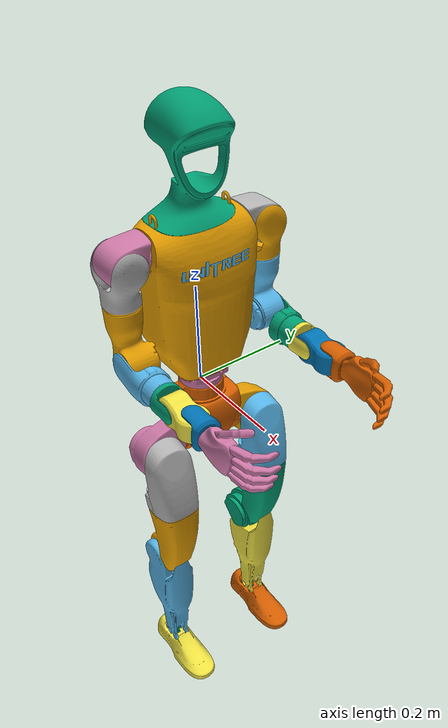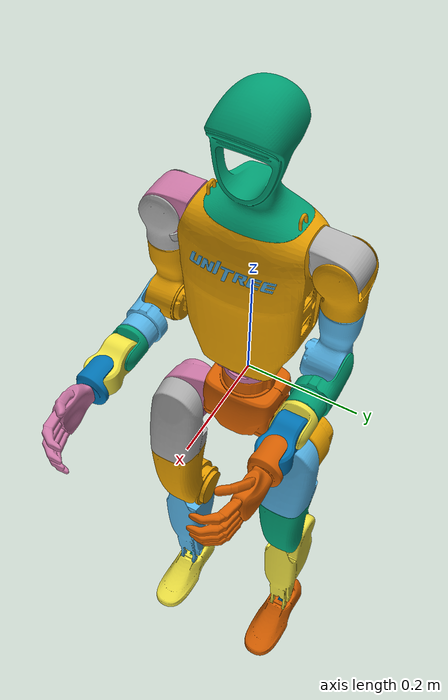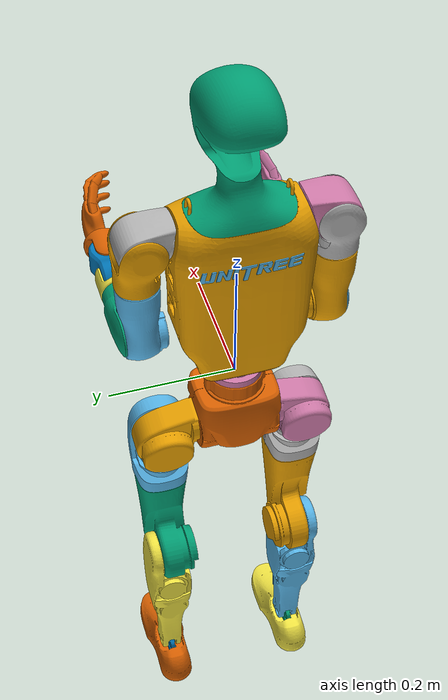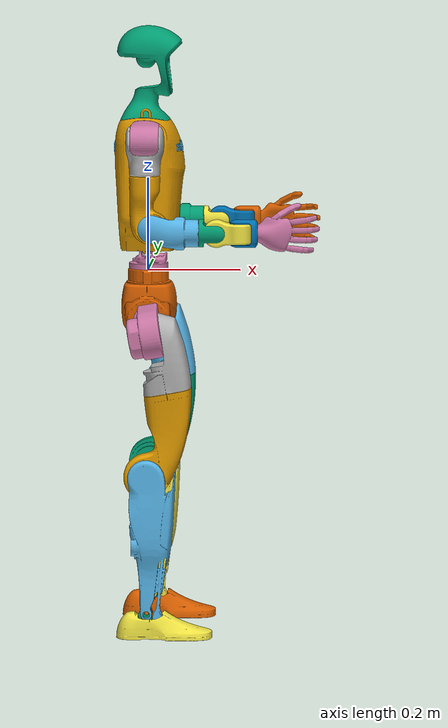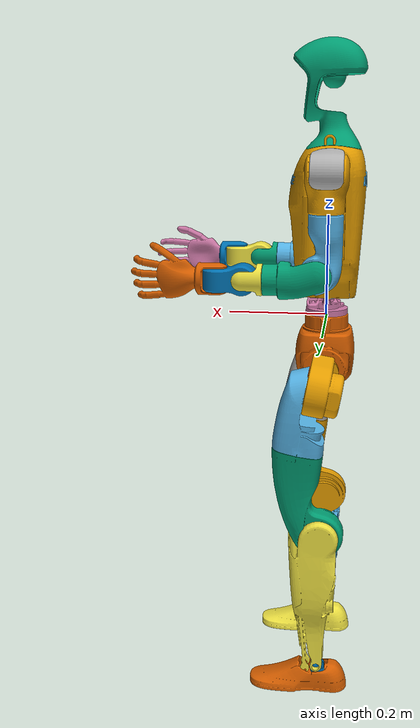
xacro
<robot name="g1_29dof" xmlns:xacro="http://www.ros.org/wiki/xacro">
	<xacro:property name="PI" value="3.1415926535897931"/>

	<xacro:arg name="end_effector" default="rubber_hand"/>

	<!-- Include the modular macros -->
	<xacro:include filename="$(find unitree_g1_description)/xacro/arm.xacro"/>
	<xacro:include filename="$(find unitree_g1_description)/xacro/leg.xacro"/>
	<xacro:include filename="$(find unitree_g1_description)/xacro/body.xacro"/>

	<!-- Legs using modular macro -->
	<!-- Left leg (direction = 1) -->
	<xacro:UnitreeG1Leg name="one" direction="1"/>

	<!-- Right leg (direction = -1 for mirroring) -->
	<xacro:UnitreeG1Leg name="two" direction="-1"/>

	<!-- Body using modular macro -->
	<xacro:UnitreeG1Body/>

	<!-- Arms using modular macro -->
	<xacro:UnitreeG1Arm name="left" direction="1"/>

	<xacro:UnitreeG1Arm name="right" direction="-1"/>

	<xacro:include filename="$(find unitree_g1_description)/xacro/hand.xacro"/>
</robot>

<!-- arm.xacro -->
<robot xmlns:xacro="http://www.ros.org/wiki/xacro">
	<xacro:property name="PI" value="3.1415926535897931"/>

	<xacro:macro name="UnitreeG1Arm" params="name direction:=1">
		<!--
		Unitree G1 Arm Macro
		Parameters:
		- name: arm name prefix (e.g., "left", "right")
		- direction: 1 for right arm, -1 for left arm (for mirroring)
		-->

		<xacro:property name="prefix" value="${name + '_' if name else ''}"/>

		<!-- Shoulder Pitch Link -->
		<link name="${prefix}shoulder_pitch_link">
			<inertial>
				<origin xyz="0 ${direction*0.035892} -0.011628"/>
				<mass value="0.718"/>
				<inertia ixx="0.0004291" ixy="${direction*-9.2E-06}" ixz="6.4E-06"
								 iyy="0.000453" iyz="${direction*2.26E-05}" izz="0.000423"/>
			</inertial>
			<visual>
				<geometry>
					<mesh filename="file://$(find unitree_g1_description)/meshes/arm/shoulder_pitch.obj"
								scale="1 ${direction} 1"/>
				</geometry>
			</visual>
			<collision>
				<origin xyz="0 ${direction*0.04} -0.01" rpy="0 ${PI/2} 0"/>
				<geometry>
					<cylinder radius="0.03" length="0.05"/>
				</geometry>
			</collision>
		</link>

		<!-- Shoulder Pitch Joint -->
		<joint name="${prefix}joint1" type="revolute">
			<origin xyz="0.0039563 ${direction*0.10022} 0.24778"
							rpy="${direction*0.27931} 5.4949E-05 ${direction*-0.00019159}"/>
			<parent link="torso_link"/>
			<child link="${prefix}shoulder_pitch_link"/>
			<axis xyz="0 1 0"/>
			<limit lower="-3.0892" upper="2.6704" effort="25" velocity="37"/>
		</joint>

		<!-- Shoulder Roll Link -->
		<link name="${prefix}shoulder_roll_link">
			<inertial>
				<origin xyz="-0.000227 ${direction*0.00727} -0.063243"/>
				<mass value="0.643"/>
				<inertia ixx="0.0006177" ixy="${direction*-1E-06}" ixz="8.7E-06"
								 iyy="0.0006912" iyz="${direction*-5.3E-06}" izz="0.0003894"/>
			</inertial>
			<visual>
				<geometry>
					<mesh filename="file://$(find unitree_g1_description)/meshes/arm/shoulder_roll.obj"
								scale="1 ${direction} 1"/>
				</geometry>
			</visual>
			<collision>
				<origin xyz="-0.004 ${direction*0.006} -0.053"/>
				<geometry>
					<cylinder radius="0.03" length="0.03"/>
				</geometry>
			</collision>
		</link>

		<!-- Shoulder Roll Joint -->
		<joint name="${prefix}joint2" type="revolute">
			<origin xyz="0 ${direction*0.038} -0.013831" rpy="${direction*-0.27925} 0 0"/>
			<parent link="${prefix}shoulder_pitch_link"/>
			<child link="${prefix}shoulder_roll_link"/>
			<axis xyz="1 0 0"/>
			<limit lower="${-1.5882 if direction == 1 else -2.2515}"
						 upper="${2.2515 if direction == 1 else 1.5882}" effort="25" velocity="37"/>
		</joint>

		<!-- Shoulder Yaw Link -->
		<link name="${prefix}shoulder_yaw_link">
			<inertial>
				<origin xyz="0.010773 ${direction*-0.002949} -0.072009"/>
				<mass value="0.734"/>
				<inertia ixx="0.0009988" ixy="${direction*7.9E-06}" ixz="0.0001412"
								 iyy="0.0010605" iyz="${direction*-2.86E-05}" izz="0.0004354"/>
			</inertial>
			<visual>
				<geometry>
					<mesh filename="file://$(find unitree_g1_description)/meshes/arm/shoulder_yaw.obj"
								scale="1 ${direction} 1"/>
				</geometry>
			</visual>
			<collision>
				<origin xyz="0 0 -0.02"/>
				<geometry>
					<cylinder radius="0.03" length="0.08"/>
				</geometry>
			</collision>
			<collision>
				<origin xyz="0.01 ${direction*-0.01} -0.08" rpy="${PI/2.0} 0 0"/>
				<geometry>
					<cylinder radius="0.03" length="0.06"/>
				</geometry>
			</collision>
		</link>

		<!-- Shoulder Yaw Joint -->
		<joint name="${prefix}joint3" type="revolute">
			<origin xyz="0 ${direction*0.00624} -0.1032"/>
			<parent link="${prefix}shoulder_roll_link"/>
			<child link="${prefix}shoulder_yaw_link"/>
			<axis xyz="0 0 1"/>
			<limit lower="-2.618" upper="2.618" effort="25" velocity="37"/>
		</joint>

		<!-- Elbow Link -->
		<link name="${prefix}elbow_link">
			<inertial>
				<origin xyz="0.064956 ${direction*0.004454} -0.010062"/>
				<mass value="0.6"/>
				<inertia ixx="0.0002891" ixy="${direction*6.53E-05}" ixz="1.72E-05"
								 iyy="0.0004152" iyz="${direction*-5.6E-06}" izz="0.0004197"/>
			</inertial>
			<visual>
				<geometry>
					<mesh filename="file://$(find unitree_g1_description)/meshes/arm/elbow.obj"
								scale="1 ${direction} 1"/>
				</geometry>
			</visual>
			<collision>
				<origin xyz="0.07 0 -0.01" rpy="0 ${PI/2.0} 0"/>
				<geometry>
					<cylinder radius="0.03" length="0.06"/>
				</geometry>
			</collision>
		</link>

		<!-- Elbow Joint -->
		<joint name="${prefix}joint4" type="revolute">
			<origin xyz="0.015783 0 -0.080518"/>
			<parent link="${prefix}shoulder_yaw_link"/>
			<child link="${prefix}elbow_link"/>
			<axis xyz="0 1 0"/>
			<limit lower="-1.0472" upper="2.0944" effort="25" velocity="37"/>
		</joint>

		<!-- Wrist Roll Link -->
		<link name="${prefix}wrist_roll_link">
			<inertial>
				<origin xyz="0.01713944778 ${direction*0.00053759094} 0.00000048864"/>
				<mass value="0.08544498"/>
				<inertia ixx="0.00004821544023" ixy="${direction*-0.00000424511021}"
								 ixz="0.00000000510599" iyy="0.00003722899093"
								 iyz="${direction*-0.00000000123525}" izz="0.00005482106541"/>
			</inertial>
			<visual>
				<geometry>
					<mesh filename="file://$(find unitree_g1_description)/meshes/arm/wrist_roll.obj"/>
				</geometry>
			</visual>
		</link>

		<!-- Wrist Roll Joint -->
		<joint name="${prefix}joint5" type="revolute">
			<origin xyz="0.100 ${direction*0.00188791} -0.010"/>
			<axis xyz="1 0 0"/>
			<parent link="${prefix}elbow_link"/>
			<child link="${prefix}wrist_roll_link"/>
			<limit effort="25" velocity="37" lower="-1.972222054" upper="1.972222054"/>
		</joint>

		<!-- Wrist Pitch Link -->
		<link name="${prefix}wrist_pitch_link">
			<inertial>
				<origin xyz="0.02299989837 ${direction*-0.00111685314} -0.00111658096"/>
				<mass value="0.48404956"/>
				<inertia ixx="0.00016579646273" ixy="${direction*-0.00001231206746}"
								 ixz="0.00001231699194" iyy="0.00042954057410"
								 iyz="${direction*0.00000081417712}" izz="0.00042953697654"/>
			</inertial>
			<visual>
				<geometry>
					<mesh filename="file://$(find unitree_g1_description)/meshes/arm/wrist_pitch.obj"/>
				</geometry>
			</visual>
			<collision>
				<origin rpy="${PI/2.0} 0 0"/>
				<geometry>
					<cylinder radius="0.03" length="0.06"/>
				</geometry>
			</collision>
			<collision>
				<origin xyz="0.06 0 0"/>
				<geometry>
					<cylinder radius="0.03" length="0.05"/>
				</geometry>
			</collision>
		</link>

		<!-- Wrist Pitch Joint -->
		<joint name="${prefix}joint6" type="revolute">
			<origin xyz="0.038 0 0"/>
			<axis xyz="0 1 0"/>
			<parent link="${prefix}wrist_roll_link"/>
			<child link="${prefix}wrist_pitch_link"/>
			<limit effort="5" velocity="22" lower="-1.614429558" upper="1.614429558"/>
		</joint>

		<!-- Wrist Yaw Link -->
		<link name="${prefix}wrist_yaw_link">
			<inertial>
				<origin xyz="0.02200381568 ${direction*0.00049485096} 0.00053861123"/>
				<mass value="0.08457647"/>
				<inertia ixx="0.00004929128828" ixy="${direction*-0.00000045735494}"
								 ixz="0.00000445867591" iyy="0.00005973338134"
								 iyz="${direction*-0.00000043217198}" izz="0.00003928083826"/>
			</inertial>
			<visual>
				<geometry>
					<mesh filename="file://$(find unitree_g1_description)/meshes/arm/wrist_yaw.obj"/>
				</geometry>
			</visual>
		</link>

		<!-- Wrist Yaw Joint -->
		<joint name="${prefix}joint7" type="revolute">
			<origin xyz="0.046 0 0"/>
			<axis xyz="0 0 1"/>
			<parent link="${prefix}wrist_pitch_link"/>
			<child link="${prefix}wrist_yaw_link"/>
			<limit effort="5" velocity="22" lower="-1.614429558" upper="1.614429558"/>
		</joint>

	</xacro:macro>

</robot>

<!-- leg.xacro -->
<robot xmlns:xacro="http://www.ros.org/wiki/xacro">

	<xacro:macro name="UnitreeG1Leg" params="name direction:=1">

		<xacro:property name="prefix" value="${name + '_' if name else ''}"/>

		<!-- Hip Pitch Link -->
		<link name="${prefix}hip_pitch_link">
			<inertial>
				<origin xyz="0.002741 ${direction*0.047791} -0.02606"/>
				<mass value="1.35"/>
				<inertia ixx="0.001811" ixy="${direction*3.68E-05}" ixz="-3.44E-05"
								 iyy="0.0014193" iyz="${direction*0.000171}" izz="0.0012812"/>
			</inertial>
			<visual>
				<geometry>
					<mesh filename="file://$(find unitree_g1_description)/meshes/leg/hip_pitch.obj"
								scale="1 ${direction} 1"/>
				</geometry>
			</visual>
			<collision>
				<geometry>
					<mesh filename="file://$(find unitree_g1_description)/meshes/leg/hip_pitch.obj"
								scale="1 ${direction} 1"/>
				</geometry>
			</collision>
		</link>

		<!-- Hip Pitch Joint -->
		<joint name="${prefix}hip_pitch_joint" type="revolute">
			<origin xyz="0 ${direction*0.064452} -0.1027"/>
			<parent link="pelvis"/>
			<child link="${prefix}hip_pitch_link"/>
			<axis xyz="0 1 0"/>
			<limit lower="-2.5307" upper="2.8798" effort="88" velocity="32"/>
		</joint>

		<!-- Hip Roll Link -->
		<link name="${prefix}hip_roll_link">
			<inertial>
				<origin xyz="0.029812 ${direction*-0.001045} -0.087934"/>
				<mass value="1.52"/>
				<inertia ixx="0.0023773" ixy="${direction*-3.8E-06}" ixz="-0.0003908"
								 iyy="0.0024123" iyz="${direction*1.84E-05}" izz="0.0016595"/>
			</inertial>
			<visual>
				<geometry>
					<mesh filename="file://$(find unitree_g1_description)/meshes/leg/hip_roll.obj"/>
				</geometry>
			</visual>
			<collision>
				<geometry>
					<mesh filename="file://$(find unitree_g1_description)/meshes/leg/hip_roll.obj"/>
				</geometry>
			</collision>
		</link>

		<!-- Hip Roll Joint -->
		<joint name="${prefix}hip_roll_joint" type="revolute">
			<origin xyz="0 ${direction*0.052} -0.030465" rpy="0 -0.1749 0"/>
			<parent link="${prefix}hip_pitch_link"/>
			<child link="${prefix}hip_roll_link"/>
			<axis xyz="1 0 0"/>
			<limit lower="${-0.5236 if direction == 1 else -2.9671}"
						 upper="${2.9671 if direction == 1 else 0.5236}" effort="88" velocity="32"/>
		</joint>

		<!-- Hip Yaw Link -->
		<link name="${prefix}hip_yaw_link">
			<inertial>
				<origin xyz="-0.057709 ${direction*-0.010981} -0.15078"/>
				<mass value="1.702"/>
				<inertia ixx="0.0057774" ixy="${direction*-0.0005411}" ixz="-0.0023948"
								 iyy="0.0076124" iyz="${direction*-0.0007072}" izz="0.003149"/>
			</inertial>
			<visual>
				<geometry>
					<mesh filename="file://$(find unitree_g1_description)/meshes/leg/hip_yaw.obj"
								scale="1 ${direction} 1"/>
				</geometry>
			</visual>
			<collision>
				<geometry>
					<mesh filename="file://$(find unitree_g1_description)/meshes/leg/hip_yaw.obj"
								scale="1 ${direction} 1"/>
				</geometry>
			</collision>
		</link>

		<!-- Hip Yaw Joint -->
		<joint name="${prefix}hip_yaw_joint" type="revolute">
			<origin xyz="0.025001 0 -0.12412"/>
			<parent link="${prefix}hip_roll_link"/>
			<child link="${prefix}hip_yaw_link"/>
			<axis xyz="0 0 1"/>
			<limit lower="-2.7576" upper="2.7576" effort="88" velocity="32"/>
		</joint>

		<!-- Knee Link -->
		<link name="${prefix}knee_link">
			<inertial>
				<origin xyz="0.005457 ${direction*0.003964} -0.12074"/>
				<mass value="1.932"/>
				<inertia ixx="0.011329" ixy="${direction*4.82E-05}" ixz="${direction*-4.49E-05}"
								 iyy="0.011277" iyz="${direction*-0.0007146}" izz="0.0015168"/>
			</inertial>
			<visual>
				<geometry>
					<mesh filename="file://$(find unitree_g1_description)/meshes/leg/knee.obj"
								scale="1 ${direction} 1"/>
				</geometry>
			</visual>
			<collision>
				<geometry>
					<mesh filename="file://$(find unitree_g1_description)/meshes/leg/knee.obj"
								scale="1 ${direction} 1"/>
				</geometry>
			</collision>
		</link>

		<!-- Knee Joint -->
		<joint name="${prefix}knee_joint" type="revolute">
			<origin xyz="-0.078273 ${direction*0.0021489} -0.17734" rpy="0 0.1749 0"/>
			<parent link="${prefix}hip_yaw_link"/>
			<child link="${prefix}knee_link"/>
			<axis xyz="0 1 0"/>
			<limit lower="-0.087267" upper="2.8798" effort="139" velocity="20"/>
		</joint>

		<!-- Ankle Pitch Link -->
		<link name="${prefix}ankle_pitch_link">
			<inertial>
				<origin xyz="-0.007269 0 0.011137"/>
				<mass value="0.074"/>
				<inertia ixx="8.4E-06" ixy="0" ixz="-2.9E-06" iyy="1.89E-05" iyz="0" izz="1.26E-05"/>
			</inertial>
			<visual>
				<geometry>
					<mesh filename="file://$(find unitree_g1_description)/meshes/leg/ankle_pitch.obj"/>
				</geometry>
			</visual>
			<collision>
				<geometry>
					<mesh filename="file://$(find unitree_g1_description)/meshes/leg/ankle_pitch.obj"/>
				</geometry>
			</collision>
		</link>

		<!-- Ankle Pitch Joint -->
		<joint name="${prefix}ankle_pitch_joint" type="revolute">
			<origin xyz="0 ${direction*-9.4445E-05} -0.30001"/>
			<parent link="${prefix}knee_link"/>
			<child link="${prefix}ankle_pitch_link"/>
			<axis xyz="0 1 0"/>
			<limit lower="-0.87267" upper="0.5236" effort="35" velocity="30"/>
		</joint>

		<!-- Ankle Roll Link -->
		<link name="${prefix}ankle_roll_link">
			<inertial>
				<origin xyz="0.026505 0 -0.016425"/>
				<mass value="0.608"/>
				<inertia ixx="0.0002231" ixy="${direction*2E-07}" ixz="8.91E-05"
								 iyy="0.0016161" iyz="${direction*-1E-07}" izz="0.0016667"/>
			</inertial>
			<visual>
				<geometry>
					<mesh filename="file://$(find unitree_g1_description)/meshes/leg/ankle_roll.obj"/>
				</geometry>
			</visual>
			<collision>
				<origin xyz="-0.05 0.025 -0.03"/>
				<geometry>
					<sphere radius="0.005"/>
				</geometry>
			</collision>
			<collision>
				<origin xyz="-0.05 -0.025 -0.03"/>
				<geometry>
					<sphere radius="0.005"/>
				</geometry>
			</collision>
			<collision>
				<origin xyz="0.12 0.03 -0.03"/>
				<geometry>
					<sphere radius="0.005"/>
				</geometry>
			</collision>
			<collision>
				<origin xyz="0.12 -0.03 -0.03"/>
				<geometry>
					<sphere radius="0.005"/>
				</geometry>
			</collision>
		</link>

		<!-- Ankle Roll Joint -->
		<joint name="${prefix}ankle_roll_joint" type="revolute">
			<origin xyz="0 0 -0.017558"/>
			<parent link="${prefix}ankle_pitch_link"/>
			<child link="${prefix}ankle_roll_link"/>
			<axis xyz="1 0 0"/>
			<limit lower="-0.2618" upper="0.2618" effort="35" velocity="30"/>
		</joint>

	</xacro:macro>

</robot>

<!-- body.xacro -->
<robot xmlns:xacro="http://www.ros.org/wiki/xacro">

	<xacro:macro name="UnitreeG1Body">
		<!--
		Unitree G1 Body Macro
		Includes: pelvis, torso, head, sensors, and logo
		-->

		<link name="base_link"/>
		<joint name="base_link_joint" type="fixed">
			<parent link="base_link"/>
			<child link="pelvis"/>
		</joint>

		<!-- Pelvis Link -->
		<link name="pelvis">
			<inertial>
				<origin xyz="0 0 -0.07605"/>
				<mass value="3.813"/>
				<inertia ixx="0.010549" ixy="0" ixz="2.1E-06" iyy="0.0093089" iyz="0" izz="0.0079184"/>
			</inertial>
			<visual>
				<geometry>
					<mesh filename="file://$(find unitree_g1_description)/meshes/body/pelvis.obj"/>
				</geometry>
			</visual>
		</link>

		<!-- Torso Structure -->
		<!-- Waist Yaw Link -->
		<link name="waist_yaw_link">
			<inertial>
				<origin xyz="0.003494 0.000233 0.018034"/>
				<mass value="0.214"/>
				<inertia ixx="0.00010673" ixy="2.703E-06" ixz="-7.631E-06" iyy="0.00010422" iyz="-2.01E-07" izz="0.0001625"/>
			</inertial>
			<visual>
				<geometry>
					<mesh filename="file://$(find unitree_g1_description)/meshes/body/waist_yaw.obj"/>
				</geometry>
			</visual>
		</link>

		<!-- Waist Yaw Joint -> body_joint1 -->
		<joint name="body_joint1" type="revolute">
			<parent link="pelvis"/>
			<child link="waist_yaw_link"/>
			<axis xyz="0 0 1"/>
			<limit lower="-2.618" upper="2.618" effort="88" velocity="32"/>
		</joint>

		<!-- Waist Roll Link -->
		<link name="waist_roll_link">
			<inertial>
				<origin xyz="0 2.3E-05 0"/>
				<mass value="0.086"/>
				<inertia ixx="7.079E-06" ixy="0" ixz="0" iyy="6.339E-06" iyz="0" izz="8.245E-06"/>
			</inertial>
			<visual>
				<geometry>
					<mesh filename="file://$(find unitree_g1_description)/meshes/body/waist_roll.obj"/>
				</geometry>
			</visual>
		</link>

		<!-- Waist Roll Joint -> body_joint2 -->
		<joint name="body_joint2" type="revolute">
			<origin xyz="-0.0039635 0 0.044"/>
			<parent link="waist_yaw_link"/>
			<child link="waist_roll_link"/>
			<axis xyz="1 0 0"/>
			<limit lower="-0.52" upper="0.52" effort="35" velocity="30"/>
		</joint>

		<!-- Torso Link -->
		<link name="torso_link">
			<inertial>
				<origin xyz="0.000931 0.000346 0.15082"/>
				<mass value="6.78"/>
				<inertia ixx="0.05905" ixy="3.3302E-05" ixz="-0.0017715" iyy="0.047014" iyz="-2.2399E-05" izz="0.025652"/>
			</inertial>
			<visual>
				<geometry>
					<mesh filename="file://$(find unitree_g1_description)/meshes/body/torso.obj"/>
				</geometry>
			</visual>
			<collision>
				<origin xyz="0.008 0 0.05"/>
				<geometry>
					<box size="0.12 0.15 0.15"/>
				</geometry>
			</collision>
			<collision>
				<origin xyz="0.008 0 0.2"/>
				<geometry>
					<box size="0.12 0.2 0.15"/>
				</geometry>
			</collision>
		</link>

		<!-- Waist Pitch Joint -> body_joint3 -->
		<joint name="body_joint3" type="revolute">
			<parent link="waist_roll_link"/>
			<child link="torso_link"/>
			<axis xyz="0 1 0"/>
			<limit lower="-0.52" upper="0.52" effort="35" velocity="30"/>
		</joint>

		<!-- Logo -->
		<link name="logo_link">
			<inertial>
				<mass value="0.001"/>
				<inertia ixx="1e-7" ixy="0" ixz="0" iyy="1e-7" iyz="0" izz="1e-7"/>
			</inertial>
			<visual>
				<geometry>
					<mesh filename="file://$(find unitree_g1_description)/meshes/body/logo.obj"/>
				</geometry>
			</visual>
		</link>

		<joint name="logo_joint" type="fixed">
			<origin xyz="0.0039635 0 -0.044"/>
			<parent link="torso_link"/>
			<child link="logo_link"/>
		</joint>

		<!-- Head -->
		<link name="head_link">
			<inertial>
				<origin xyz="0.005267 0.000299 0.449869"/>
				<mass value="1.036"/>
				<inertia ixx="0.004085051" ixy="-2.543E-06" ixz="-6.9455E-05" iyy="0.004185212" iyz="-3.726E-06"
							 izz="0.001807911"/>
			</inertial>
			<visual>
				<geometry>
					<mesh filename="file://$(find unitree_g1_description)/meshes/body/head.obj"/>
				</geometry>
			</visual>
			<collision>
				<geometry>
					<mesh filename="file://$(find unitree_g1_description)/meshes/body/head.obj"/>
				</geometry>
			</collision>
		</link>

		<joint name="head_joint" type="fixed">
			<origin xyz="0.0039635 0 -0.044"/>
			<parent link="torso_link"/>
			<child link="head_link"/>
		</joint>

		<!-- IMU Sensors -->
		<link name="imu_in_torso"/>
		<joint name="imu_in_torso_joint" type="fixed">
			<origin xyz="-0.03959 -0.00224 0.14792"/>
			<parent link="torso_link"/>
			<child link="imu_in_torso"/>
		</joint>

		<link name="imu_in_pelvis"/>
		<joint name="imu_in_pelvis_joint" type="fixed">
			<origin xyz="0.04525 0 -0.08339"/>
			<parent link="pelvis"/>
			<child link="imu_in_pelvis"/>
		</joint>

		<!-- Cameras and Sensors -->
		<link name="d435_link"/>
		<joint name="d435_joint" type="fixed">
			<origin xyz="0.0576235 0.01753 0.42987" rpy="0 0.8307767239493009 0"/>
			<parent link="torso_link"/>
			<child link="d435_link"/>
		</joint>

		<link name="mid360_link"/>
		<joint name="mid360_joint" type="fixed">
			<origin xyz="0.0002835 0.00003 0.41618" rpy="0 0.04014257279586953 0"/>
			<parent link="torso_link"/>
			<child link="mid360_link"/>
		</joint>

	</xacro:macro>

</robot>

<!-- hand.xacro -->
<robot xmlns:xacro="http://www.ros.org/wiki/xacro">
	<xacro:arg name="type" default="rubber_hand"/>

	<xacro:if value="${'$(arg type)' == 'rubber_hand'}">
		<xacro:macro name="UnitreeG1Hand" params="name direction:=1">
			<xacro:property name="prefix" value="${name + '_' if name else ''}"/>
			<!-- Hand Link -->
			<link name="${prefix}hand_base">
				<inertial>
					<origin xyz="0.05361310808 ${direction*-0.00295905240} 0.00215413091"/>
					<mass value="0.170"/>
					<inertia ixx="0.00010099485234748" ixy="${direction*0.00003618590790516}"
									 ixz="-0.00000074301518642" iyy="0.00028135871571621"
									 iyz="${direction*-0.00000330189743286}" izz="0.00021894770413514"/>
				</inertial>
				<visual>
					<geometry>
						<mesh filename="file://$(find unitree_g1_description)/meshes/arm/hand.obj" scale="1 ${direction} 1"/>
					</geometry>
				</visual>
				<collision>
					<origin xyz="0.07 ${direction*-0.02} 0"/>
					<geometry>
						<box size="0.12 0.05 0.1"/>
					</geometry>
				</collision>
			</link>
		</xacro:macro>

		<xacro:UnitreeG1Hand name="left" direction="1"/>
		<xacro:UnitreeG1Hand name="right" direction="-1"/>

		<joint name="left_hand_palm_joint" type="fixed" dont_collapse="true">
			<origin xyz="0.0415 0.003 0"/>
			<parent link="left_wrist_yaw_link"/>
			<child link="left_hand_base"/>
		</joint>
		<joint name="right_hand_palm_joint" type="fixed" dont_collapse="true">
			<origin xyz="0.0415 -0.003 0"/>
			<parent link="right_wrist_yaw_link"/>
			<child link="right_hand_base"/>
		</joint>
	</xacro:if>

	<xacro:if value="${'$(arg type)' == 'revo2'}">
		<xacro:include filename="$(find brainco_description)/xacro/revo2.xacro"/>
		<xacro:BrainCoHand name="left" direction="1" use_flange="true" fixed_joints="true"/>
		<xacro:BrainCoHand name="right" direction="-1" use_flange="true" fixed_joints="true"/>

		<joint name="left_hand_palm_joint" type="fixed" dont_collapse="true">
			<origin xyz="0.0415 0 0"/>
			<parent link="left_wrist_yaw_link"/>
			<child link="left_flange"/>
		</joint>

		<joint name="right_hand_palm_joint" type="fixed" dont_collapse="true">
			<origin xyz="0.0415 0 0"/>
			<parent link="right_wrist_yaw_link"/>
			<child link="right_flange"/>
		</joint>
	</xacro:if>

</robot>
